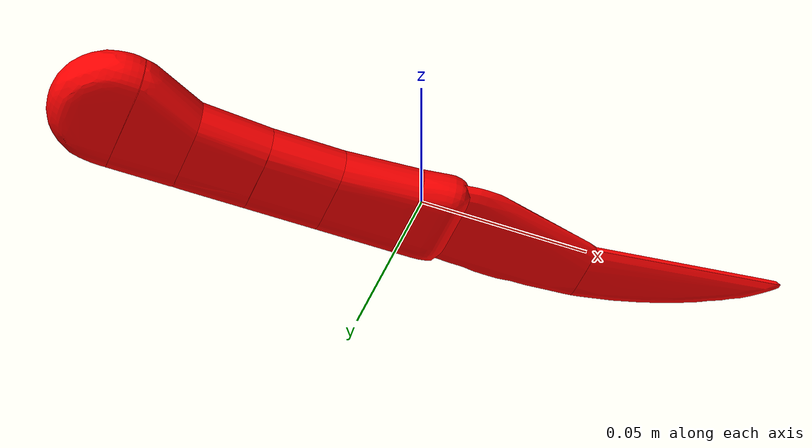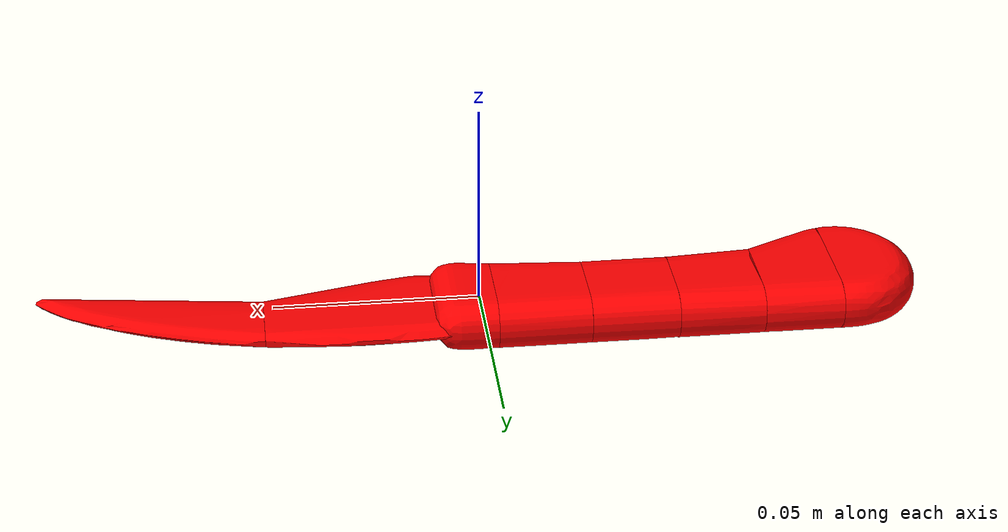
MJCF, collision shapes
<?xml version="1.0" ?>
<mujoco model="peeler">
	<compiler meshdir="peeler/meshes" texturedir="peeler/textures" angle="radian" autolimits="true" balanceinertia="true" boundmass="0.000001" boundinertia="0.000001"/>
	<default>
		<default class="visual">
			<geom contype="0" conaffinity="0"/>
		</default>
		<default class="collision">
			<geom rgba="1.0 0.0 0.0 0.0"/>
		</default>
	</default>
	<asset>
		<mesh name="HiltWood" file="obj/HiltWood.obj" scale="1.0 1.0 1.0"/>
		<mesh name="HiltWood_001" file="stl/HiltWood_001.stl" scale="1.0 1.0 1.0"/>
		<mesh name="HiltWood_002" file="stl/HiltWood_002.stl" scale="1.0 1.0 1.0"/>
		<mesh name="HiltWood_003" file="stl/HiltWood_003.stl" scale="1.0 1.0 1.0"/>
		<mesh name="HiltWood_004" file="stl/HiltWood_004.stl" scale="1.0 1.0 1.0"/>
		<mesh name="HiltWood_005" file="stl/HiltWood_005.stl" scale="1.0 1.0 1.0"/>
		<mesh name="HiltWood_006" file="stl/HiltWood_006.stl" scale="1.0 1.0 1.0"/>
		<mesh name="PeelerBlade" file="stl/PeelerBlade.stl" scale="1.0 1.0 1.0"/>
		<mesh name="PeelerBlade_001" file="stl/PeelerBlade_001.stl" scale="1.0 1.0 1.0"/>
		<mesh name="PeelerBlade_002" file="stl/PeelerBlade_002.stl" scale="1.0 1.0 1.0"/>
		<mesh name="HiltMetal" file="obj/HiltMetal.obj" scale="1.0 1.0 1.0"/>
		<mesh name="HiltMetal_001" file="stl/HiltMetal_001.stl" scale="1.0 1.0 1.0"/>
		<mesh name="HiltMetal_002" file="stl/HiltMetal_002.stl" scale="1.0 1.0 1.0"/>
		<mesh name="HiltMetal_003" file="stl/HiltMetal_003.stl" scale="1.0 1.0 1.0"/>
		<material name="M_HiltWood_002" texture="T_HiltWood"/>
		<material name="M_PeelerBlade" rgba="0.5476999878883362 0.5476999878883362 0.5476999878883362 1.0" emission="0.0"/>
		<material name="M_HiltMetal_002" texture="T_HiltMetal"/>
		<texture name="T_HiltWood" type="2d" file="T_HiltWood.png"/>
		<texture name="T_HiltMetal" type="2d" file="T_HiltMetal.png"/>
	</asset>
	<worldbody>
		<body name="peeler" pos="0.0 0.0 0.0" quat="1.0 0.0 0.0 0.0">
			<body name="hilt_wood" pos="0.0 0.0 0.0" quat="1.0 0.0 0.0 0.0">
				<inertial mass="0.21962310373783112" pos="-0.050066988915205 0.0036353906616568565 9.754562597663607e-07" quat="0.9998356103897095 0.00010666427988326177 -9.539360945609587e-08 -0.018130699172616005" diaginertia="1.723994137137197e-05 0.0008041122346185148 0.0008177962736226618"/>
				<geom name="HiltWood" type="mesh" pos="0.0 0.0 0.0" quat="1.0 0.0 0.0 0.0" mesh="HiltWood" material="M_HiltWood_002" class="visual"/>
				<geom name="HiltWood_001" type="mesh" pos="0.0 0.0 0.0" quat="1.0 0.0 0.0 0.0" mesh="HiltWood_001" class="collision"/>
				<geom name="HiltWood_002" type="mesh" pos="0.0 0.0 0.0" quat="1.0 0.0 0.0 0.0" mesh="HiltWood_002" class="collision"/>
				<geom name="HiltWood_003" type="mesh" pos="0.0 0.0 0.0" quat="1.0 0.0 0.0 0.0" mesh="HiltWood_003" class="collision"/>
				<geom name="HiltWood_004" type="mesh" pos="0.0 0.0 0.0" quat="1.0 0.0 0.0 0.0" mesh="HiltWood_004" class="collision"/>
				<geom name="HiltWood_005" type="mesh" pos="0.0 0.0 0.0" quat="1.0 0.0 0.0 0.0" mesh="HiltWood_005" class="collision"/>
				<geom name="HiltWood_006" type="mesh" pos="0.0 0.0 0.0" quat="1.0 0.0 0.0 0.0" mesh="HiltWood_006" class="collision"/>
			</body>
			<body name="hilt_metal" pos="0.0 0.0 0.0" quat="1.0 0.0 0.0 0.0">
				<inertial mass="0.010820739902555943" pos="-0.04637749865651131 0.003047635778784752 -1.3348119054512608e-08" quat="0.9999093413352966 -1.2239692296134308e-05 2.8217976932864985e-07 -0.013465049676597118" diaginertia="2.58284899246064e-07 3.714871854754165e-05 3.721423854585737e-05"/>
				<geom name="HiltMetal" type="mesh" pos="0.0 0.0 0.0" quat="1.0 0.0 0.0 0.0" mesh="HiltMetal" material="M_HiltMetal_002" class="visual"/>
				<geom name="HiltMetal_001" type="mesh" pos="0.0 0.0 0.0" quat="1.0 0.0 0.0 0.0" mesh="HiltMetal_001" class="collision"/>
				<geom name="HiltMetal_002" type="mesh" pos="0.0 0.0 0.0" quat="1.0 0.0 0.0 0.0" mesh="HiltMetal_002" class="collision"/>
				<geom name="HiltMetal_003" type="mesh" pos="0.0 0.0 0.0" quat="1.0 0.0 0.0 0.0" mesh="HiltMetal_003" class="collision"/>
			</body>
			<body name="peeler_blade" pos="0.0 0.0 0.0" quat="1.0 0.0 0.0 0.0">
				<inertial mass="0.02406381256878376" pos="0.016638213768601418 0.005272947251796722 -6.809246055894391e-09" quat="0.9991083145141602 -4.348323159319989e-07 5.832686156281852e-08 0.04222063347697258" diaginertia="1.3092379731460824e-06 3.123350325040519e-05 3.2535001082578674e-05"/>
				<geom name="PeelerBlade" type="mesh" pos="0.0 0.0 0.0" quat="1.0 0.0 0.0 0.0" mesh="PeelerBlade" material="M_PeelerBlade" class="visual"/>
				<geom name="PeelerBlade_001" type="mesh" pos="0.0 0.0 0.0" quat="1.0 0.0 0.0 0.0" mesh="PeelerBlade_001" class="collision"/>
				<geom name="PeelerBlade_002" type="mesh" pos="0.0 0.0 0.0" quat="1.0 0.0 0.0 0.0" mesh="PeelerBlade_002" class="collision"/>
			</body>
		</body>
	</worldbody>
	<equality/>
</mujoco>
